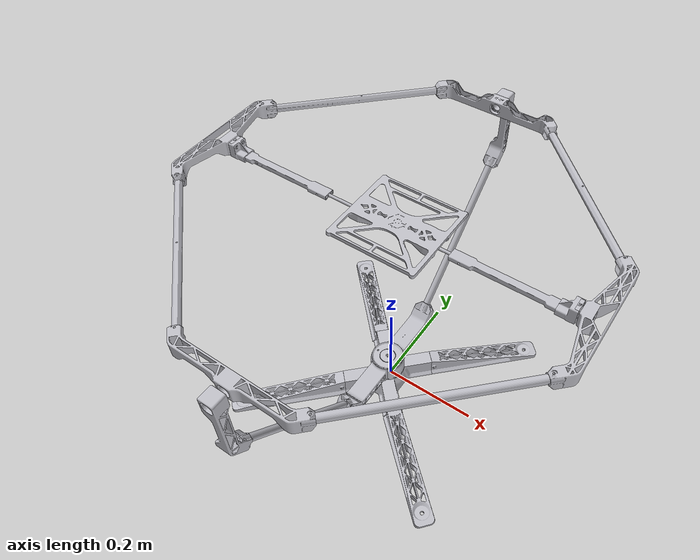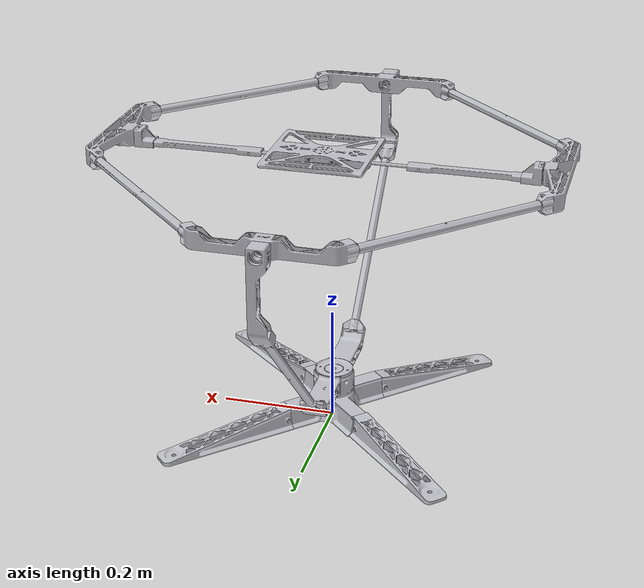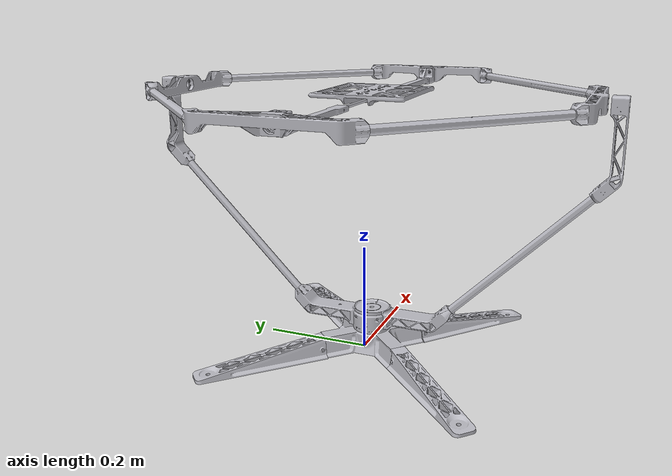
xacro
<?xml version="1.0" ?>
<robot name="gyro"
  xmlns:xacro="http://www.ros.org/wiki/xacro">

  <link name="base_link">
    <inertial>
      <origin xyz="0.0011571731303746855 -0.014949350635758592 0.02164931364982968" rpy="0 0 0"/>
      <mass value="0.2961227403148616"/>
      <inertia ixx="0.000767" iyy="0.00055" izz="0.001242" ixy="0.0" iyz="-0.0" ixz="-0.0"/>
    </inertial>
    <visual>
      <origin xyz="0 0 0" rpy="0 0 0"/>
      <geometry>
        <mesh filename="package://cefiro_description/meshes/gyro/base_link.stl" scale="0.001 0.001 0.001"/>
      </geometry>
      <material name="silver"/>
    </visual>
    <collision>
      <origin xyz="0 0 0" rpy="0 0 0"/>
      <geometry>
        <mesh filename="package://cefiro_description/meshes/gyro/base_link.stl" scale="0.001 0.001 0.001"/>
      </geometry>
    </collision>
  </link>

  <link name="gyro_snap-in-leg_1">
    <inertial>
      <origin xyz="0.062963 0.098467 -0.017273" rpy="0 0 0"/>
      <mass value="0.0"/>
      <inertia ixx="0.0" iyy="0.0" izz="0.0" ixy="0.0" iyz="0.0" ixz="0.0"/>
    </inertial>
    <visual>
      <origin xyz="0.062963 0.098467 -0.017273" rpy="0 0 0"/>
      <geometry>
        <mesh filename="package://cefiro_description/meshes/gyro/gyro_snap-in-leg_1.stl" scale="0.001 0.001 0.001"/>
      </geometry>
      <material name="silver"/>
    </visual>
    <collision>
      <origin xyz="0.062963 0.098467 -0.017273" rpy="0 0 0"/>
      <geometry>
        <mesh filename="package://cefiro_description/meshes/gyro/gyro_snap-in-leg_1.stl" scale="0.001 0.001 0.001"/>
      </geometry>
    </collision>
  </link>

  <link name="gyro_snap-in-leg__1__1">
    <inertial>
      <origin xyz="0.074257 -0.057271 -0.017273" rpy="0 0 0"/>
      <mass value="0.0"/>
      <inertia ixx="0.0" iyy="0.0" izz="0.0" ixy="0.0" iyz="0.0" ixz="0.0"/>
    </inertial>
    <visual>
      <origin xyz="0.074257 -0.057271 -0.017273" rpy="0 0 0"/>
      <geometry>
        <mesh filename="package://cefiro_description/meshes/gyro/gyro_snap-in-leg__1__1.stl" scale="0.001 0.001 0.001"/>
      </geometry>
      <material name="silver"/>
    </visual>
    <collision>
      <origin xyz="0.074257 -0.057271 -0.017273" rpy="0 0 0"/>
      <geometry>
        <mesh filename="package://cefiro_description/meshes/gyro/gyro_snap-in-leg__1__1.stl" scale="0.001 0.001 0.001"/>
      </geometry>
    </collision>
  </link>

  <link name="gyro_snap-in-leg__2__1">
    <inertial>
      <origin xyz="-0.065269 -0.068569 -0.017273" rpy="0 0 0"/>
      <mass value="0.0"/>
      <inertia ixx="0.0" iyy="0.0" izz="0.0" ixy="0.0" iyz="0.0" ixz="0.0"/>
    </inertial>
    <visual>
      <origin xyz="-0.065269 -0.068569 -0.017273" rpy="0 0 0"/>
      <geometry>
        <mesh filename="package://cefiro_description/meshes/gyro/gyro_snap-in-leg__2__1.stl" scale="0.001 0.001 0.001"/>
      </geometry>
      <material name="silver"/>
    </visual>
    <collision>
      <origin xyz="-0.065269 -0.068569 -0.017273" rpy="0 0 0"/>
      <geometry>
        <mesh filename="package://cefiro_description/meshes/gyro/gyro_snap-in-leg__2__1.stl" scale="0.001 0.001 0.001"/>
      </geometry>
    </collision>
  </link>

  <link name="gyro_snap-in-leg__3__1">
    <inertial>
      <origin xyz="-0.074544 0.089198 -0.016523" rpy="0 0 0"/>
      <mass value="0.0"/>
      <inertia ixx="0.0" iyy="0.0" izz="0.0" ixy="0.0" iyz="0.0" ixz="0.0"/>
    </inertial>
    <visual>
      <origin xyz="-0.074544 0.089198 -0.016523" rpy="0 0 0"/>
      <geometry>
        <mesh filename="package://cefiro_description/meshes/gyro/gyro_snap-in-leg__3__1.stl" scale="0.001 0.001 0.001"/>
      </geometry>
      <material name="silver"/>
    </visual>
    <collision>
      <origin xyz="-0.074544 0.089198 -0.016523" rpy="0 0 0"/>
      <geometry>
        <mesh filename="package://cefiro_description/meshes/gyro/gyro_snap-in-leg__3__1.stl" scale="0.001 0.001 0.001"/>
      </geometry>
    </collision>
  </link>

  <link name="gyro_base_CPv12_1">
    <inertial>
      <origin xyz="-0.001156 0.014951 -0.031773" rpy="0 0 0"/>
      <mass value="0.0"/>
      <inertia ixx="0.0" iyy="0.0" izz="0.0" ixy="0.0" iyz="0.0" ixz="0.0"/>
    </inertial>
    <visual>
      <origin xyz="-0.001156 0.014951 -0.031773" rpy="0 0 0"/>
      <geometry>
        <mesh filename="package://cefiro_description/meshes/gyro/gyro_base_CPv12_1.stl" scale="0.001 0.001 0.001"/>
      </geometry>
      <material name="silver"/>
    </visual>
    <collision>
      <origin xyz="-0.001156 0.014951 -0.031773" rpy="0 0 0"/>
      <geometry>
        <mesh filename="package://cefiro_description/meshes/gyro/gyro_base_CPv12_1.stl" scale="0.001 0.001 0.001"/>
      </geometry>
    </collision>
  </link>

  <link name="gyro_ccv12_1">
    <inertial>
      <origin xyz="-0.001156 0.014951 -0.041673" rpy="0 0 0"/>
      <mass value="0.0"/>
      <inertia ixx="0.0" iyy="0.0" izz="0.0" ixy="0.0" iyz="0.0" ixz="0.0"/>
    </inertial>
    <visual>
      <origin xyz="-0.001156 0.014951 -0.041673" rpy="0 0 0"/>
      <geometry>
        <mesh filename="package://cefiro_description/meshes/gyro/gyro_ccv12_1.stl" scale="0.001 0.001 0.001"/>
      </geometry>
      <material name="silver"/>
    </visual>
    <collision>
      <origin xyz="-0.001156 0.014951 -0.041673" rpy="0 0 0"/>
      <geometry>
        <mesh filename="package://cefiro_description/meshes/gyro/gyro_ccv12_1.stl" scale="0.001 0.001 0.001"/>
      </geometry>
    </collision>
  </link>

  <link name="gyro_B1P_1">
    <inertial>
      <origin xyz="-0.001156 0.014951 -0.059173" rpy="0 0 0"/>
      <mass value="0.0"/>
      <inertia ixx="0.0" iyy="0.0" izz="0.0" ixy="0.0" iyz="0.0" ixz="0.0"/>
    </inertial>
    <visual>
      <origin xyz="-0.001156 0.014951 -0.059173" rpy="0 0 0"/>
      <geometry>
        <mesh filename="package://cefiro_description/meshes/gyro/gyro_B1P_1.stl" scale="0.001 0.001 0.001"/>
      </geometry>
      <material name="silver"/>
    </visual>
    <collision>
      <origin xyz="-0.001156 0.014951 -0.059173" rpy="0 0 0"/>
      <geometry>
        <mesh filename="package://cefiro_description/meshes/gyro/gyro_B1P_1.stl" scale="0.001 0.001 0.001"/>
      </geometry>
    </collision>
  </link>

  <link name="gyro_Y-DBA_1">
    <inertial>
      <origin xyz="2.9059467922362865e-07 8.60399398841874e-06 0.0022329783234873724" rpy="0 0 0"/>
      <mass value="0.015293274790880064"/>
      <inertia ixx="6e-06" iyy="6e-06" izz="1.2e-05" ixy="0.0" iyz="-0.0" ixz="-0.0"/>
    </inertial>
    <visual>
      <origin xyz="-0.001156 0.014951 -0.078173" rpy="0 0 0"/>
      <geometry>
        <mesh filename="package://cefiro_description/meshes/gyro/gyro_Y-DBA_1.stl" scale="0.001 0.001 0.001"/>
      </geometry>
      <material name="silver"/>
    </visual>
    <collision>
      <origin xyz="-0.001156 0.014951 -0.078173" rpy="0 0 0"/>
      <geometry>
        <mesh filename="package://cefiro_description/meshes/gyro/gyro_Y-DBA_1.stl" scale="0.001 0.001 0.001"/>
      </geometry>
    </collision>
  </link>

  <link name="gyro_Y-LOCK_1">
    <inertial>
      <origin xyz="-4.1981919979804105e-07 -4.708780733560236e-07 -0.005295109629470551" rpy="0 0 0"/>
      <mass value="0.0041583623164599464"/>
      <inertia ixx="0.0" iyy="0.0" izz="0.0" ixy="-0.0" iyz="0.0" ixz="0.0"/>
    </inertial>
    <visual>
      <origin xyz="-0.001156 0.014951 -0.082473" rpy="0 0 0"/>
      <geometry>
        <mesh filename="package://cefiro_description/meshes/gyro/gyro_Y-LOCK_1.stl" scale="0.001 0.001 0.001"/>
      </geometry>
      <material name="silver"/>
    </visual>
    <collision>
      <origin xyz="-0.001156 0.014951 -0.082473" rpy="0 0 0"/>
      <geometry>
        <mesh filename="package://cefiro_description/meshes/gyro/gyro_Y-LOCK_1.stl" scale="0.001 0.001 0.001"/>
      </geometry>
    </collision>
  </link>

  <link name="gyro_CON-Y_368mm_1">
    <inertial>
      <origin xyz="0.00046014841241998647 0.1308280219229364 0.13105552856890101" rpy="0 0 0"/>
      <mass value="0.07094391733872507"/>
      <inertia ixx="0.000807" iyy="0.000404" izz="0.000405" ixy="-1e-06" iyz="-0.000403" ixz="-1e-06"/>
    </inertial>
    <visual>
      <origin xyz="-0.001481 -0.125801 -0.086526" rpy="0 0 0"/>
      <geometry>
        <mesh filename="package://cefiro_description/meshes/gyro/gyro_CON-Y_368mm_1.stl" scale="0.001 0.001 0.001"/>
      </geometry>
      <material name="silver"/>
    </visual>
    <collision>
      <origin xyz="-0.001481 -0.125801 -0.086526" rpy="0 0 0"/>
      <geometry>
        <mesh filename="package://cefiro_description/meshes/gyro/gyro_CON-Y_368mm_1.stl" scale="0.001 0.001 0.001"/>
      </geometry>
    </collision>
  </link>

  <link name="gyro_CON-Y_368mm__1__1">
    <inertial>
      <origin xyz="-0.0001451604414352285 -0.13105600467752276 0.1308281954375885" rpy="0 0 0"/>
      <mass value="0.07094391733872507"/>
      <inertia ixx="0.000807" iyy="0.000405" izz="0.000404" ixy="-1e-06" iyz="0.000403" ixz="1e-06"/>
    </inertial>
    <visual>
      <origin xyz="-0.00083 0.155704 -0.086526" rpy="0 0 0"/>
      <geometry>
        <mesh filename="package://cefiro_description/meshes/gyro/gyro_CON-Y_368mm__1__1.stl" scale="0.001 0.001 0.001"/>
      </geometry>
      <material name="silver"/>
    </visual>
    <collision>
      <origin xyz="-0.00083 0.155704 -0.086526" rpy="0 0 0"/>
      <geometry>
        <mesh filename="package://cefiro_description/meshes/gyro/gyro_CON-Y_368mm__1__1.stl" scale="0.001 0.001 0.001"/>
      </geometry>
    </collision>
  </link>

  <link name="gyro_B2S-R_1">
    <inertial>
      <origin xyz="-0.000225 0.417397 -0.348219" rpy="0 0 0"/>
      <mass value="0.0"/>
      <inertia ixx="0.0" iyy="0.0" izz="0.0" ixy="0.0" iyz="0.0" ixz="0.0"/>
    </inertial>
    <visual>
      <origin xyz="-0.000225 0.417397 -0.348219" rpy="0 0 0"/>
      <geometry>
        <mesh filename="package://cefiro_description/meshes/gyro/gyro_B2S-R_1.stl" scale="0.001 0.001 0.001"/>
      </geometry>
      <material name="silver"/>
    </visual>
    <collision>
      <origin xyz="-0.000225 0.417397 -0.348219" rpy="0 0 0"/>
      <geometry>
        <mesh filename="package://cefiro_description/meshes/gyro/gyro_B2S-R_1.stl" scale="0.001 0.001 0.001"/>
      </geometry>
    </collision>
  </link>

  <link name="gyro_B2S_1">
    <inertial>
      <origin xyz="-0.002086 -0.387494 -0.348219" rpy="0 0 0"/>
      <mass value="0.0"/>
      <inertia ixx="0.0" iyy="0.0" izz="0.0" ixy="0.0" iyz="0.0" ixz="0.0"/>
    </inertial>
    <visual>
      <origin xyz="-0.002086 -0.387494 -0.348219" rpy="0 0 0"/>
      <geometry>
        <mesh filename="package://cefiro_description/meshes/gyro/gyro_B2S_1.stl" scale="0.001 0.001 0.001"/>
      </geometry>
      <material name="silver"/>
    </visual>
    <collision>
      <origin xyz="-0.002086 -0.387494 -0.348219" rpy="0 0 0"/>
      <geometry>
        <mesh filename="package://cefiro_description/meshes/gyro/gyro_B2S_1.stl" scale="0.001 0.001 0.001"/>
      </geometry>
    </collision>
  </link>

  <link name="gyro_A2-LW_1">
    <inertial>
      <origin xyz="-0.002089 -0.388847 -0.488972" rpy="0 0 0"/>
      <mass value="0.0"/>
      <inertia ixx="0.0" iyy="0.0" izz="0.0" ixy="0.0" iyz="0.0" ixz="0.0"/>
    </inertial>
    <visual>
      <origin xyz="-0.002089 -0.388847 -0.488972" rpy="0 0 0"/>
      <geometry>
        <mesh filename="package://cefiro_description/meshes/gyro/gyro_A2-LW_1.stl" scale="0.001 0.001 0.001"/>
      </geometry>
      <material name="silver"/>
    </visual>
    <collision>
      <origin xyz="-0.002089 -0.388847 -0.488972" rpy="0 0 0"/>
      <geometry>
        <mesh filename="package://cefiro_description/meshes/gyro/gyro_A2-LW_1.stl" scale="0.001 0.001 0.001"/>
      </geometry>
    </collision>
  </link>

  <link name="gyro_CON-P_360mm_1">
    <inertial>
      <origin xyz="0.12691013516768695 -0.1275268308090541 -0.00012374419014998805" rpy="0 0 0"/>
      <mass value="0.0670222866413884"/>
      <inertia ixx="0.000364" iyy="0.00036" izz="0.000722" ixy="0.00036" iyz="0.0" ixz="-0.0"/>
    </inertial>
    <visual>
      <origin xyz="-0.118665 -0.362637 -0.489072" rpy="0 0 0"/>
      <geometry>
        <mesh filename="package://cefiro_description/meshes/gyro/gyro_CON-P_360mm_1.stl" scale="0.001 0.001 0.001"/>
      </geometry>
      <material name="silver"/>
    </visual>
    <collision>
      <origin xyz="-0.118665 -0.362637 -0.489072" rpy="0 0 0"/>
      <geometry>
        <mesh filename="package://cefiro_description/meshes/gyro/gyro_CON-P_360mm_1.stl" scale="0.001 0.001 0.001"/>
      </geometry>
    </collision>
  </link>

  <link name="gyro_A1-LW_1">
    <inertial>
      <origin xyz="-0.372719 -0.107405 -0.48929" rpy="0 0 0"/>
      <mass value="0.0"/>
      <inertia ixx="0.0" iyy="0.0" izz="0.0" ixy="0.0" iyz="0.0" ixz="0.0"/>
    </inertial>
    <visual>
      <origin xyz="-0.372719 -0.107405 -0.48929" rpy="0 0 0"/>
      <geometry>
        <mesh filename="package://cefiro_description/meshes/gyro/gyro_A1-LW_1.stl" scale="0.001 0.001 0.001"/>
      </geometry>
      <material name="silver"/>
    </visual>
    <collision>
      <origin xyz="-0.372719 -0.107405 -0.48929" rpy="0 0 0"/>
      <geometry>
        <mesh filename="package://cefiro_description/meshes/gyro/gyro_A1-LW_1.stl" scale="0.001 0.001 0.001"/>
      </geometry>
    </collision>
  </link>

  <link name="gyro_CON-P_360mm__2__1">
    <inertial>
      <origin xyz="-0.1274984673027718 -0.12693779318759435 0.00012328076207634986" rpy="0 0 0"/>
      <mass value="0.0670222866413884"/>
      <inertia ixx="0.00036" iyy="0.000363" izz="0.000722" ixy="-0.00036" iyz="-0.0" ixz="-0.0"/>
    </inertial>
    <visual>
      <origin xyz="-0.372163 0.133197 -0.48929" rpy="0 0 0"/>
      <geometry>
        <mesh filename="package://cefiro_description/meshes/gyro/gyro_CON-P_360mm__2__1.stl" scale="0.001 0.001 0.001"/>
      </geometry>
      <material name="silver"/>
    </visual>
    <collision>
      <origin xyz="-0.372163 0.133197 -0.48929" rpy="0 0 0"/>
      <geometry>
        <mesh filename="package://cefiro_description/meshes/gyro/gyro_CON-P_360mm__2__1.stl" scale="0.001 0.001 0.001"/>
      </geometry>
    </collision>
  </link>

  <link name="gyro_CON-P_360mm__3__1">
    <inertial>
      <origin xyz="0.12770510657685546 0.12714431449154887 -0.00012332200891979062" rpy="0 0 0"/>
      <mass value="0.0670222866413884"/>
      <inertia ixx="0.00036" iyy="0.000364" izz="0.000722" ixy="-0.00036" iyz="-0.0" ixz="-0.0"/>
    </inertial>
    <visual>
      <origin xyz="0.369838 -0.109122 -0.488655" rpy="0 0 0"/>
      <geometry>
        <mesh filename="package://cefiro_description/meshes/gyro/gyro_CON-P_360mm__3__1.stl" scale="0.001 0.001 0.001"/>
      </geometry>
      <material name="silver"/>
    </visual>
    <collision>
      <origin xyz="0.369838 -0.109122 -0.488655" rpy="0 0 0"/>
      <geometry>
        <mesh filename="package://cefiro_description/meshes/gyro/gyro_CON-P_360mm__3__1.stl" scale="0.001 0.001 0.001"/>
      </geometry>
    </collision>
  </link>

  <link name="gyro_X1_1">
    <inertial>
      <origin xyz="-0.0024691111071020178 1.6711779799699622e-05 0.002241013718970064" rpy="0 0 0"/>
      <mass value="0.005899083895605196"/>
      <inertia ixx="0.0" iyy="1e-06" izz="0.0" ixy="0.0" iyz="0.0" ixz="0.0"/>
    </inertial>
    <visual>
      <origin xyz="-0.350047 0.012844 -0.48927" rpy="0 0 0"/>
      <geometry>
        <mesh filename="package://cefiro_description/meshes/gyro/gyro_X1_1.stl" scale="0.001 0.001 0.001"/>
      </geometry>
      <material name="silver"/>
    </visual>
    <collision>
      <origin xyz="-0.350047 0.012844 -0.48927" rpy="0 0 0"/>
      <geometry>
        <mesh filename="package://cefiro_description/meshes/gyro/gyro_X1_1.stl" scale="0.001 0.001 0.001"/>
      </geometry>
    </collision>
  </link>

  <link name="gyro_X1-SV_1">
    <inertial>
      <origin xyz="-0.341145 0.012825 -0.491324" rpy="0 0 0"/>
      <mass value="0.0"/>
      <inertia ixx="0.0" iyy="0.0" izz="0.0" ixy="0.0" iyz="0.0" ixz="0.0"/>
    </inertial>
    <visual>
      <origin xyz="-0.341145 0.012825 -0.491324" rpy="0 0 0"/>
      <geometry>
        <mesh filename="package://cefiro_description/meshes/gyro/gyro_X1-SV_1.stl" scale="0.001 0.001 0.001"/>
      </geometry>
      <material name="silver"/>
    </visual>
    <collision>
      <origin xyz="-0.341145 0.012825 -0.491324" rpy="0 0 0"/>
      <geometry>
        <mesh filename="package://cefiro_description/meshes/gyro/gyro_X1-SV_1.stl" scale="0.001 0.001 0.001"/>
      </geometry>
    </collision>
  </link>

  <link name="gyro_CF_Rod_1">
    <inertial>
      <origin xyz="-0.3259988090669113 0.0007535309577930676 -0.0002781729336499006" rpy="0 0 0"/>
      <mass value="0.0213844442018673"/>
      <inertia ixx="0.0" iyy="0.000758" izz="0.000758" ixy="2e-06" iyz="0.0" ixz="-1e-06"/>
    </inertial>
    <visual>
      <origin xyz="-0.326155 0.012803 -0.479312" rpy="0 0 0"/>
      <geometry>
        <mesh filename="package://cefiro_description/meshes/gyro/gyro_CF_Rod_1.stl" scale="0.001 0.001 0.001"/>
      </geometry>
      <material name="silver"/>
    </visual>
    <collision>
      <origin xyz="-0.326155 0.012803 -0.479312" rpy="0 0 0"/>
      <geometry>
        <mesh filename="package://cefiro_description/meshes/gyro/gyro_CF_Rod_1.stl" scale="0.001 0.001 0.001"/>
      </geometry>
    </collision>
  </link>

  <link name="gyro_R-BED_1">
    <inertial>
      <origin xyz="-0.10352420055043005 0.0002330410959185663 0.0008161723715476854" rpy="0 0 0"/>
      <mass value="0.019226377494430135"/>
      <inertia ixx="1e-06" iyy="7.5e-05" izz="7.6e-05" ixy="0.0" iyz="0.0" ixz="-0.0"/>
    </inertial>
    <visual>
      <origin xyz="-0.328655 0.012809 -0.479564" rpy="0 0 0"/>
      <geometry>
        <mesh filename="package://cefiro_description/meshes/gyro/gyro_R-BED_1.stl" scale="0.001 0.001 0.001"/>
      </geometry>
      <material name="silver"/>
    </visual>
    <collision>
      <origin xyz="-0.328655 0.012809 -0.479564" rpy="0 0 0"/>
      <geometry>
        <mesh filename="package://cefiro_description/meshes/gyro/gyro_R-BED_1.stl" scale="0.001 0.001 0.001"/>
      </geometry>
    </collision>
  </link>

  <link name="gyro_R-BED__1__1">
    <inertial>
      <origin xyz="0.10102261074029514 -0.00022696844238441483 0.0012408438402203292" rpy="0 0 0"/>
      <mass value="0.019226377494430135"/>
      <inertia ixx="1e-06" iyy="7.5e-05" izz="7.6e-05" ixy="0.0" iyz="-0.0" ixz="-0.0"/>
    </inertial>
    <visual>
      <origin xyz="0.325843 0.011296 -0.478755" rpy="0 0 0"/>
      <geometry>
        <mesh filename="package://cefiro_description/meshes/gyro/gyro_R-BED__1__1.stl" scale="0.001 0.001 0.001"/>
      </geometry>
      <material name="silver"/>
    </visual>
    <collision>
      <origin xyz="0.325843 0.011296 -0.478755" rpy="0 0 0"/>
      <geometry>
        <mesh filename="package://cefiro_description/meshes/gyro/gyro_R-BED__1__1.stl" scale="0.001 0.001 0.001"/>
      </geometry>
    </collision>
  </link>

  <link name="gyro_X1__1__1">
    <inertial>
      <origin xyz="0.002464952734687831 -1.709858660562877e-05 0.002245225309986887" rpy="0 0 0"/>
      <mass value="0.005899083895605196"/>
      <inertia ixx="0.0" iyy="1e-06" izz="0.0" ixy="0.0" iyz="-0.0" ixz="-0.0"/>
    </inertial>
    <visual>
      <origin xyz="0.347722 0.01123 -0.488674" rpy="0 0 0"/>
      <geometry>
        <mesh filename="package://cefiro_description/meshes/gyro/gyro_X1__1__1.stl" scale="0.001 0.001 0.001"/>
      </geometry>
      <material name="silver"/>
    </visual>
    <collision>
      <origin xyz="0.347722 0.01123 -0.488674" rpy="0 0 0"/>
      <geometry>
        <mesh filename="package://cefiro_description/meshes/gyro/gyro_X1__1__1.stl" scale="0.001 0.001 0.001"/>
      </geometry>
    </collision>
  </link>

  <link name="gyro_X1-SV__1__1">
    <inertial>
      <origin xyz="0.338824 0.011249 -0.490743" rpy="0 0 0"/>
      <mass value="0.0"/>
      <inertia ixx="0.0" iyy="0.0" izz="0.0" ixy="0.0" iyz="0.0" ixz="0.0"/>
    </inertial>
    <visual>
      <origin xyz="0.338824 0.011249 -0.490743" rpy="0 0 0"/>
      <geometry>
        <mesh filename="package://cefiro_description/meshes/gyro/gyro_X1-SV__1__1.stl" scale="0.001 0.001 0.001"/>
      </geometry>
      <material name="silver"/>
    </visual>
    <collision>
      <origin xyz="0.338824 0.011249 -0.490743" rpy="0 0 0"/>
      <geometry>
        <mesh filename="package://cefiro_description/meshes/gyro/gyro_X1-SV__1__1.stl" scale="0.001 0.001 0.001"/>
      </geometry>
    </collision>
  </link>

  <link name="gyro_drone_baseB_1">
    <inertial>
      <origin xyz="-0.0001544208838804989 0.0005767916477225649 0.001312845423951825" rpy="0 0 0"/>
      <mass value="0.7026029896442744"/>
      <inertia ixx="12.720417" iyy="20.565111" izz="33.123626" ixy="0.056906" iyz="-0.001329" ixz="-0.016107"/>
    </inertial>
    <visual>
      <origin xyz="-0.019065 0.012093 -0.488" rpy="0 0 0"/>
      <geometry>
        <mesh filename="package://cefiro_description/meshes/gyro/gyro_drone_baseB_1.stl" scale="0.001 0.001 0.001"/>
      </geometry>
      <material name="silver"/>
    </visual>
    <collision>
      <origin xyz="-0.019065 0.012093 -0.488" rpy="0 0 0"/>
      <geometry>
        <mesh filename="package://cefiro_description/meshes/gyro/gyro_drone_baseB_1.stl" scale="0.001 0.001 0.001"/>
      </geometry>
    </collision>
  </link>

  <link name="gyro_A2-LW__1__1">
    <inertial>
      <origin xyz="-0.116931 0.38725 -0.489072" rpy="0 0 0"/>
      <mass value="0.0"/>
      <inertia ixx="0.0" iyy="0.0" izz="0.0" ixy="0.0" iyz="0.0" ixz="0.0"/>
    </inertial>
    <visual>
      <origin xyz="-0.116931 0.38725 -0.489072" rpy="0 0 0"/>
      <geometry>
        <mesh filename="package://cefiro_description/meshes/gyro/gyro_A2-LW__1__1.stl" scale="0.001 0.001 0.001"/>
      </geometry>
      <material name="silver"/>
    </visual>
    <collision>
      <origin xyz="-0.116931 0.38725 -0.489072" rpy="0 0 0"/>
      <geometry>
        <mesh filename="package://cefiro_description/meshes/gyro/gyro_A2-LW__1__1.stl" scale="0.001 0.001 0.001"/>
      </geometry>
    </collision>
  </link>

  <link name="gyro_CON-P_360mm__1__1">
    <inertial>
      <origin xyz="-0.12714358122604158 0.12770493355062845 -0.00034151346905458846" rpy="0 0 0"/>
      <mass value="0.0670222866413884"/>
      <inertia ixx="0.000364" iyy="0.00036" izz="0.000722" ixy="0.00036" iyz="0.0" ixz="-0.0"/>
    </inertial>
    <visual>
      <origin xyz="0.116341 0.386711 -0.488873" rpy="0 0 0"/>
      <geometry>
        <mesh filename="package://cefiro_description/meshes/gyro/gyro_CON-P_360mm__1__1.stl" scale="0.001 0.001 0.001"/>
      </geometry>
      <material name="silver"/>
    </visual>
    <collision>
      <origin xyz="0.116341 0.386711 -0.488873" rpy="0 0 0"/>
      <geometry>
        <mesh filename="package://cefiro_description/meshes/gyro/gyro_CON-P_360mm__1__1.stl" scale="0.001 0.001 0.001"/>
      </geometry>
    </collision>
  </link>

  <link name="gyro_A1-LW__1__1">
    <inertial>
      <origin xyz="0.370394 0.13148 -0.488655" rpy="0 0 0"/>
      <mass value="0.0"/>
      <inertia ixx="0.0" iyy="0.0" izz="0.0" ixy="0.0" iyz="0.0" ixz="0.0"/>
    </inertial>
    <visual>
      <origin xyz="0.370394 0.13148 -0.488655" rpy="0 0 0"/>
      <geometry>
        <mesh filename="package://cefiro_description/meshes/gyro/gyro_A1-LW__1__1.stl" scale="0.001 0.001 0.001"/>
      </geometry>
      <material name="silver"/>
    </visual>
    <collision>
      <origin xyz="0.370394 0.13148 -0.488655" rpy="0 0 0"/>
      <geometry>
        <mesh filename="package://cefiro_description/meshes/gyro/gyro_A1-LW__1__1.stl" scale="0.001 0.001 0.001"/>
      </geometry>
    </collision>
  </link>

  <link name="gyro_CON-BED-ADAPTER_6mm_1">
    <inertial>
      <origin xyz="0.018951614987808292 -4.575464303644208e-05 -0.000987034675029197" rpy="0 0 0"/>
      <mass value="0.02290627435505764"/>
      <inertia ixx="1e-06" iyy="1e-05" izz="1e-05" ixy="0.0" iyz="0.0" ixz="-0.0"/>
    </inertial>
    <visual>
      <origin xyz="-0.000154 0.012049 -0.482034" rpy="0 0 0"/>
      <geometry>
        <mesh filename="package://cefiro_description/meshes/gyro/gyro_CON-BED-ADAPTER_6mm_1.stl" scale="0.001 0.001 0.001"/>
      </geometry>
      <material name="silver"/>
    </visual>
    <collision>
      <origin xyz="-0.000154 0.012049 -0.482034" rpy="0 0 0"/>
      <geometry>
        <mesh filename="package://cefiro_description/meshes/gyro/gyro_CON-BED-ADAPTER_6mm_1.stl" scale="0.001 0.001 0.001"/>
      </geometry>
    </collision>
  </link>

  <joint name="gyro_rIgid_1" type="fixed">
    <origin xyz="-0.062963 -0.098467 0.017273" rpy="0 0 0"/>
    <parent link="base_link"/>
    <child link="gyro_snap-in-leg_1"/>
  </joint>

  <joint name="gyro_rIgid_2" type="fixed">
    <origin xyz="-0.074257 0.057271 0.017273" rpy="0 0 0"/>
    <parent link="base_link"/>
    <child link="gyro_snap-in-leg__1__1"/>
  </joint>

  <joint name="gyro_rIgid_3" type="fixed">
    <origin xyz="0.065269 0.068569 0.017273" rpy="0 0 0"/>
    <parent link="base_link"/>
    <child link="gyro_snap-in-leg__2__1"/>
  </joint>

  <joint name="gyro_rIgid_4" type="fixed">
    <origin xyz="0.074544 -0.089198 0.016523" rpy="0 0 0"/>
    <parent link="base_link"/>
    <child link="gyro_snap-in-leg__3__1"/>
  </joint>

  <joint name="gyro_rIgid_5" type="fixed">
    <origin xyz="0.001156 -0.014951 0.031773" rpy="0 0 0"/>
    <parent link="base_link"/>
    <child link="gyro_base_CPv12_1"/>
  </joint>

  <joint name="gyro_rIgid_6" type="fixed">
    <origin xyz="0.0 0.0 0.0099" rpy="0 0 0"/>
    <parent link="gyro_base_CPv12_1"/>
    <child link="gyro_ccv12_1"/>
  </joint>

  <joint name="yaw" type="continuous">
    <origin xyz="0.0 0.0 0.0274" rpy="0 0 0"/>
    <parent link="gyro_base_CPv12_1"/>
    <child link="gyro_B1P_1"/>
    <axis xyz="0.0 -0.0 -1.0"/>
  </joint>

  <joint name="gyro_rIgid_8" type="fixed">
    <origin xyz="0.0 0.0 0.019" rpy="0 0 0"/>
    <parent link="gyro_B1P_1"/>
    <child link="gyro_Y-DBA_1"/>
  </joint>

  <joint name="gyro_rIgid_9" type="fixed">
    <origin xyz="0.0 0.0 0.0043" rpy="0 0 0"/>
    <parent link="gyro_Y-DBA_1"/>
    <child link="gyro_Y-LOCK_1"/>
  </joint>

  <joint name="gyro_rIgid_10" type="fixed">
    <origin xyz="0.000325 0.140752 0.027353" rpy="0 0 0"/>
    <parent link="gyro_B1P_1"/>
    <child link="gyro_CON-Y_368mm_1"/>
  </joint>

  <joint name="gyro_rIgid_11" type="fixed">
    <origin xyz="-0.000326 -0.140753 0.027353" rpy="0 0 0"/>
    <parent link="gyro_B1P_1"/>
    <child link="gyro_CON-Y_368mm__1__1"/>
  </joint>

  <joint name="gyro_rIgid_48" type="fixed">
    <origin xyz="-0.000605 -0.261693 0.261693" rpy="0 0 0"/>
    <parent link="gyro_CON-Y_368mm__1__1"/>
    <child link="gyro_B2S-R_1"/>
  </joint>

  <joint name="gyro_rIgid_49" type="fixed">
    <origin xyz="0.000605 0.261693 0.261693" rpy="0 0 0"/>
    <parent link="gyro_CON-Y_368mm_1"/>
    <child link="gyro_B2S_1"/>
  </joint>

  <joint name="pitch" type="continuous">
    <origin xyz="3e-06 0.001353 0.140753" rpy="0 0 0"/>
    <parent link="gyro_B2S_1"/>
    <child link="gyro_A2-LW_1"/>
    <axis xyz="-0.002312 -0.999997 -0.0"/>
  </joint>

  <joint name="gyro_rIgid_52" type="fixed">
    <origin xyz="0.116576 -0.02621 0.0001" rpy="0 0 0"/>
    <parent link="gyro_A2-LW_1"/>
    <child link="gyro_CON-P_360mm_1"/>
  </joint>

  <joint name="gyro_rIgid_53" type="fixed">
    <origin xyz="0.254054 -0.255232 0.000218" rpy="0 0 0"/>
    <parent link="gyro_CON-P_360mm_1"/>
    <child link="gyro_A1-LW_1"/>
  </joint>

  <joint name="gyro_rIgid_54" type="fixed">
    <origin xyz="-0.000556 -0.240602 0.0" rpy="0 0 0"/>
    <parent link="gyro_A1-LW_1"/>
    <child link="gyro_CON-P_360mm__2__1"/>
  </joint>

  <joint name="gyro_rIgid_57" type="fixed">
    <origin xyz="0.000556 0.240602 0.0" rpy="0 0 0"/>
    <parent link="gyro_A1-LW__1__1"/>
    <child link="gyro_CON-P_360mm__3__1"/>
  </joint>

  <joint name="roll" type="continuous">
    <origin xyz="-0.022672 -0.120249 -2e-05" rpy="0 0 0"/>
    <parent link="gyro_A1-LW_1"/>
    <child link="gyro_X1_1"/>
    <axis xyz="-0.999997 0.002312 -0.000854"/>
  </joint>

  <joint name="gyro_rIgid_62" type="fixed">
    <origin xyz="-0.008902 1.9e-05 0.002054" rpy="0 0 0"/>
    <parent link="gyro_X1_1"/>
    <child link="gyro_X1-SV_1"/>
  </joint>

  <joint name="gyro_rIgid_63" type="fixed">
    <origin xyz="-0.0025 6e-06 -0.000252" rpy="0 0 0"/>
    <parent link="gyro_R-BED_1"/>
    <child link="gyro_CF_Rod_1"/>
  </joint>

  <joint name="gyro_rIgid_64" type="fixed">
    <origin xyz="-0.01249 1.6e-05 -0.01176" rpy="0 0 0"/>
    <parent link="gyro_X1-SV_1"/>
    <child link="gyro_R-BED_1"/>
  </joint>

  <joint name="gyro_rIgid_65" type="fixed">
    <origin xyz="-0.651998 0.001507 -0.000557" rpy="0 0 0"/>
    <parent link="gyro_CF_Rod_1"/>
    <child link="gyro_R-BED__1__1"/>
  </joint>

  <joint name="fixed_roll" type="fixed">
    <origin xyz="0.022672 0.12025 1.9e-05" rpy="0 0 0"/>
    <parent link="gyro_A1-LW__1__1"/>
    <child link="gyro_X1__1__1"/>
    <axis xyz="0.999997 -0.002312 0.000854"/>
  </joint>

  <joint name="gyro_rIgid_67" type="fixed">
    <origin xyz="0.008898 -1.9e-05 0.002069" rpy="0 0 0"/>
    <parent link="gyro_X1__1__1"/>
    <child link="gyro_X1-SV__1__1"/>
  </joint>

  <joint name="gyro_rIgid_69" type="fixed">
    <origin xyz="0.018911 -4.4e-05 0.005966" rpy="0 0 0"/>
    <parent link="gyro_CON-BED-ADAPTER_6mm_1"/>
    <child link="gyro_drone_baseB_1"/>
  </joint>

  <joint name="gyro_rIgid_70" type="fixed">
    <origin xyz="-0.255232 -0.254053 -0.000218" rpy="0 0 0"/>
    <parent link="gyro_CON-P_360mm__2__1"/>
    <child link="gyro_A2-LW__1__1"/>
  </joint>

  <joint name="gyro_rIgid_71" type="fixed">
    <origin xyz="-0.233272 0.000539 -0.000199" rpy="0 0 0"/>
    <parent link="gyro_A2-LW__1__1"/>
    <child link="gyro_CON-P_360mm__1__1"/>
  </joint>

  <joint name="gyro_rIgid_72" type="fixed">
    <origin xyz="-0.254053 0.255231 -0.000218" rpy="0 0 0"/>
    <parent link="gyro_CON-P_360mm__1__1"/>
    <child link="gyro_A1-LW__1__1"/>
  </joint>

  <joint name="gyro_rIgid_73" type="fixed">
    <origin xyz="-0.326001 0.000754 0.002722" rpy="0 0 0"/>
    <parent link="gyro_CF_Rod_1"/>
    <child link="gyro_CON-BED-ADAPTER_6mm_1"/>
  </joint>

</robot>
